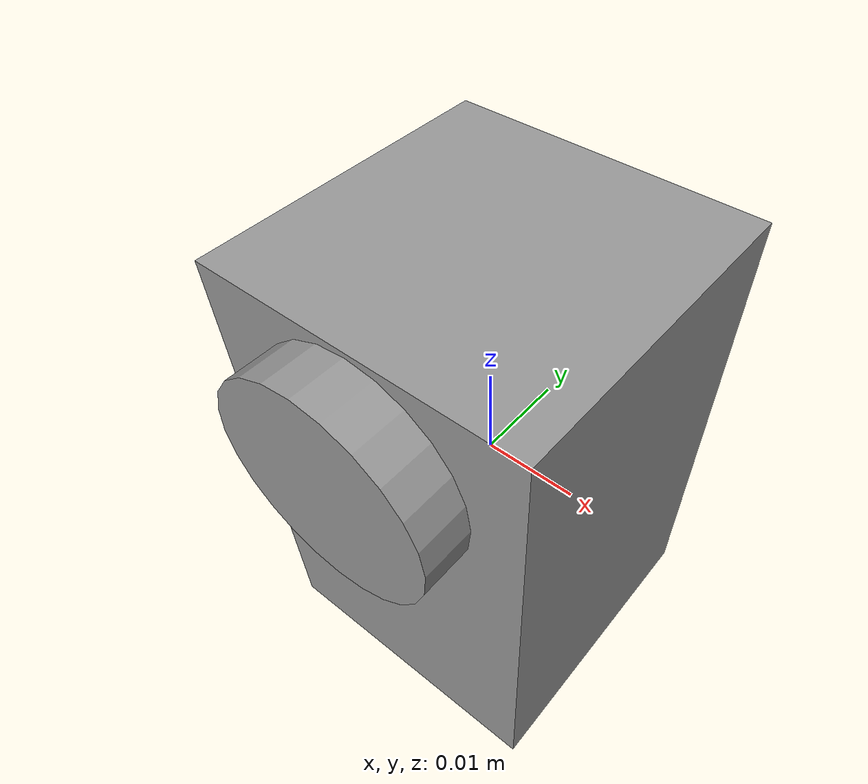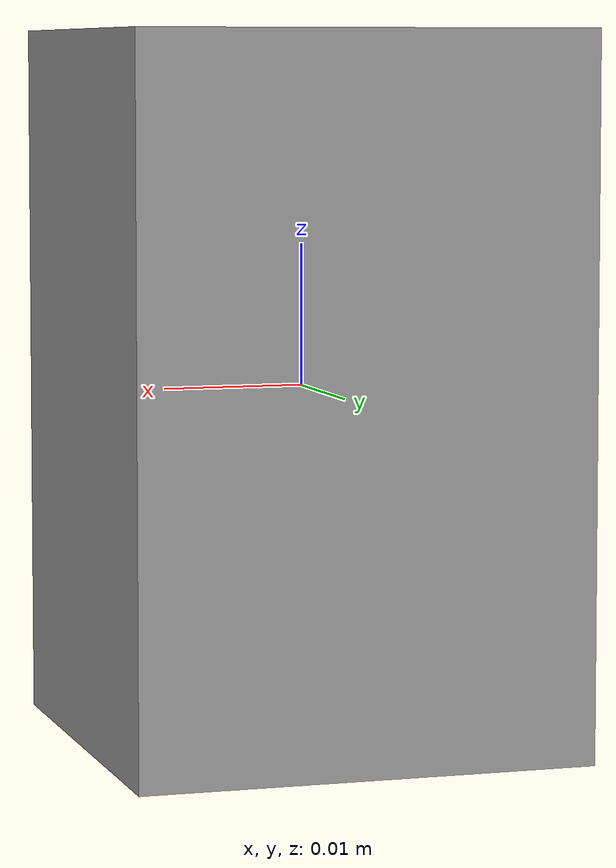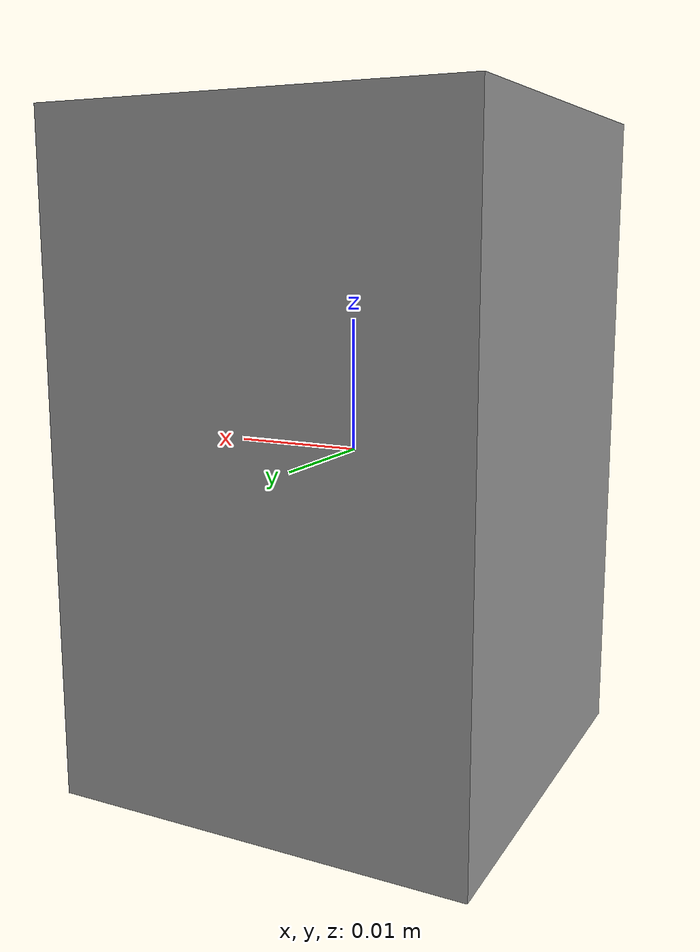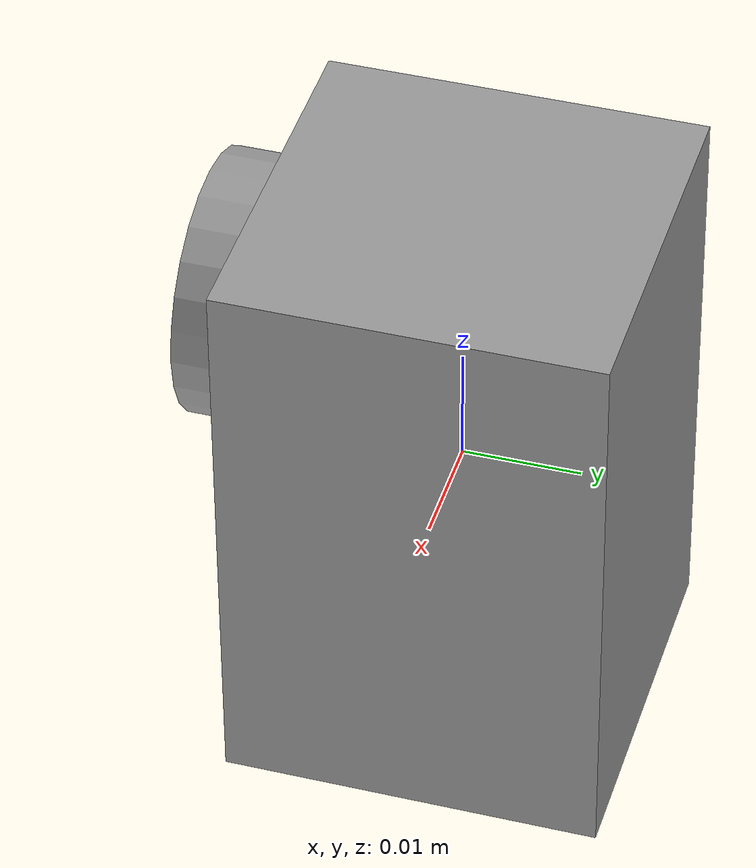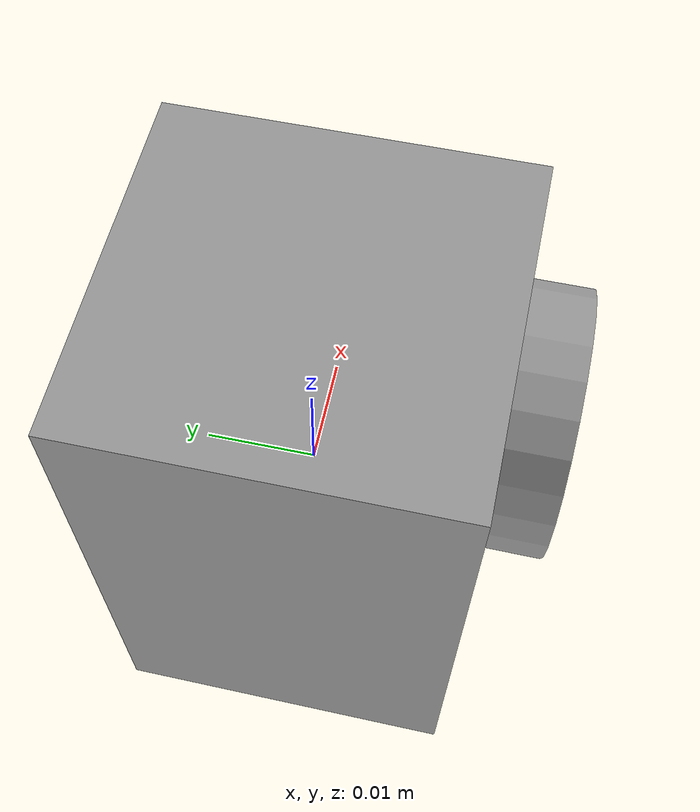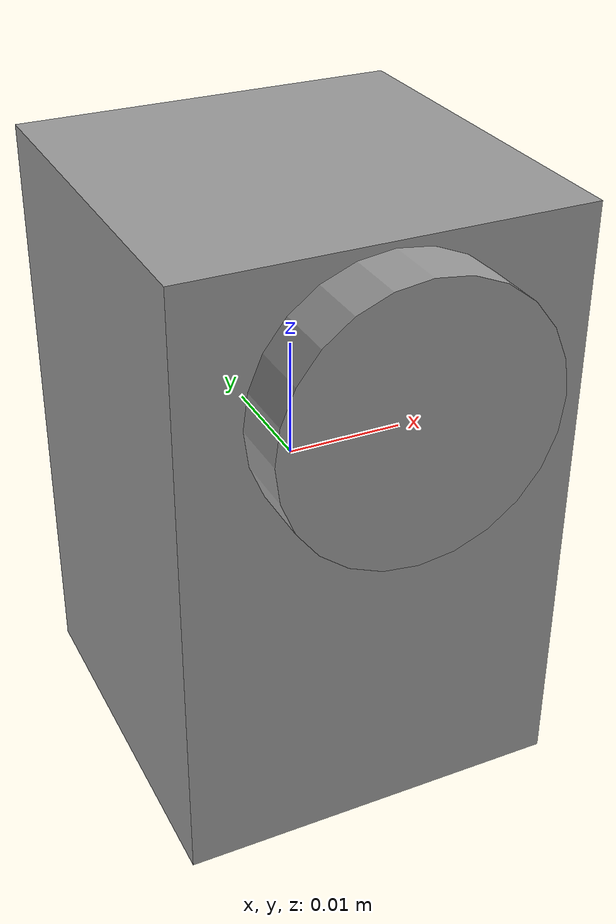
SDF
<?xml version='1.0'?>
<sdf version='1.6'>
  <model name='servo_ax12a'>
      <plugin name="ax12a" filename="libservo_pkg.so">
        <topic>/gazebo/servos/ax12a</topic>
      </plugin>
    <link name='Body'>
      <inertial>
        <mass>0.05</mass>
        <inertia>
          <ixx>1.643e-05</ixx>
          <ixy>0</ixy>
          <ixz>0</ixz>
          <iyy>1.468e-05</iyy>
          <iyz>0</iyz>
          <izz>1.028e-05</izz>
        </inertia>
        <pose frame=''>0 0 0 0 -0 0</pose>
      </inertial>
      <pose frame=''>0 0 0 0 -0 0</pose>
      <gravity>1</gravity>
      <self_collide>0</self_collide>
      <kinematic>0</kinematic>
      <enable_wind>0</enable_wind>
      <visual name='visual'>
        <pose frame=''>0 0 0 0 -0 0</pose>
        <geometry>
          <box>
            <size>0.032 0.032 0.05</size>
          </box>
        </geometry>
        <material>
          <lighting>1</lighting>
          <script>
            <uri>file://media/materials/scripts/gazebo.material</uri>
            <name>Gazebo/Grey</name>
          </script>
          <shader type='vertex'>
            <normal_map>__default__</normal_map>
          </shader>
          <ambient>0.1 0.1 0.1 1</ambient>
          <diffuse>0.1 0.1 0.1 1</diffuse>
          <specular>0.01 0.01 0.01 1</specular>
          <emissive>0 0 0 1</emissive>
        </material>
        <transparency>0</transparency>
        <cast_shadows>1</cast_shadows>
      </visual>
      <collision name='collision'>
        <laser_retro>0</laser_retro>
        <max_contacts>10</max_contacts>
        <pose frame=''>0 0 0 0 -0 0</pose>
        <geometry>
          <box>
            <size>0.032 0.032 0.05</size>
          </box>
        </geometry>
        <surface>
          <friction>
            <ode>
              <mu>1</mu>
              <mu2>1</mu2>
              <fdir1>0 0 0</fdir1>
              <slip1>0</slip1>
              <slip2>0</slip2>
            </ode>
            <torsional>
              <coefficient>1</coefficient>
              <patch_radius>0</patch_radius>
              <surface_radius>0</surface_radius>
              <use_patch_radius>1</use_patch_radius>
              <ode>
                <slip>0</slip>
              </ode>
            </torsional>
          </friction>
          <bounce>
            <restitution_coefficient>0</restitution_coefficient>
            <threshold>1e+06</threshold>
          </bounce>
          <contact>
            <collide_without_contact>0</collide_without_contact>
            <collide_without_contact_bitmask>1</collide_without_contact_bitmask>
            <collide_bitmask>1</collide_bitmask>
            <ode>
              <soft_cfm>0</soft_cfm>
              <soft_erp>0.2</soft_erp>
              <kp>1e+13</kp>
              <kd>1</kd>
              <max_vel>0.01</max_vel>
              <min_depth>0</min_depth>
            </ode>
            <bullet>
              <split_impulse>1</split_impulse>
              <split_impulse_penetration_threshold>-0.01</split_impulse_penetration_threshold>
              <soft_cfm>0</soft_cfm>
              <soft_erp>0.2</soft_erp>
              <kp>1e+13</kp>
              <kd>1</kd>
            </bullet>
          </contact>
        </surface>
      </collision>
    </link>
    <link name='Wheel'>
      <inertial>
        <mass>0.005</mass>
        <inertia>
          <ixx>1.6e-07</ixx>
          <ixy>0</ixy>
          <ixz>0</ixz>
          <iyy>1.6e-07</iyy>
          <iyz>0</iyz>
          <izz>3e-07</izz>
        </inertia>
        <pose frame=''>0 0 0 0 -0 0</pose>
      </inertial>
      <pose frame=''>0 -0.0185 0.0135 1.5708 -0 0</pose>
      <gravity>1</gravity>
      <self_collide>0</self_collide>
      <kinematic>0</kinematic>
      <enable_wind>0</enable_wind>
      <visual name='visual'>
        <pose frame=''>0 0 0 0 -0 0</pose>
        <geometry>
          <cylinder>
            <radius>0.011</radius>
            <length>0.005</length>
          </cylinder>
        </geometry>
        <material>
          <lighting>1</lighting>
          <script>
            <uri>file://media/materials/scripts/gazebo.material</uri>
            <name>Gazebo/Grey</name>
          </script>
          <shader type='vertex'>
            <normal_map>__default__</normal_map>
          </shader>
          <ambient>0.3 0.3 0.3 1</ambient>
          <diffuse>0.7 0.7 0.7 1</diffuse>
          <specular>0.01 0.01 0.01 1</specular>
          <emissive>0 0 0 1</emissive>
        </material>
        <transparency>0</transparency>
        <cast_shadows>1</cast_shadows>
      </visual>
      <collision name='collision'>
        <laser_retro>0</laser_retro>
        <max_contacts>10</max_contacts>
        <pose frame=''>0 0 0 0 -0 0</pose>
        <geometry>
          <cylinder>
            <radius>0.011</radius>
            <length>0.005</length>
          </cylinder>
        </geometry>
        <surface>
          <friction>
            <ode>
              <mu>1</mu>
              <mu2>1</mu2>
              <fdir1>0 0 0</fdir1>
              <slip1>0</slip1>
              <slip2>0</slip2>
            </ode>
            <torsional>
              <coefficient>1</coefficient>
              <patch_radius>0</patch_radius>
              <surface_radius>0</surface_radius>
              <use_patch_radius>1</use_patch_radius>
              <ode>
                <slip>0</slip>
              </ode>
            </torsional>
          </friction>
          <bounce>
            <restitution_coefficient>0</restitution_coefficient>
            <threshold>1e+06</threshold>
          </bounce>
          <contact>
            <collide_without_contact>0</collide_without_contact>
            <collide_without_contact_bitmask>1</collide_without_contact_bitmask>
            <collide_bitmask>1</collide_bitmask>
            <ode>
              <soft_cfm>0</soft_cfm>
              <soft_erp>0.2</soft_erp>
              <kp>1e+13</kp>
              <kd>1</kd>
              <max_vel>0.01</max_vel>
              <min_depth>0</min_depth>
            </ode>
            <bullet>
              <split_impulse>1</split_impulse>
              <split_impulse_penetration_threshold>-0.01</split_impulse_penetration_threshold>
              <soft_cfm>0</soft_cfm>
              <soft_erp>0.2</soft_erp>
              <kp>1e+13</kp>
              <kd>1</kd>
            </bullet>
          </contact>
        </surface>
      </collision>
    </link>
    <joint name='j_Body_Wheel' type='revolute'>
      <parent>Body</parent>
      <child>Wheel</child>
      <pose frame=''>0 0 0 0 -0 0</pose>
      <axis>
        <xyz>0 0 1</xyz>
        <use_parent_model_frame>0</use_parent_model_frame>
        <limit>
          <lower>-1.79769e+308</lower>
          <upper>1.79769e+308</upper>
          <effort>-1</effort>
          <velocity>-1</velocity>
        </limit>
        <dynamics>
          <spring_reference>0</spring_reference>
          <spring_stiffness>0</spring_stiffness>
          <damping>0.01</damping>
        </dynamics>
      </axis>
      <physics>
        <ode>
          <limit>
            <cfm>0</cfm>
            <erp>0.2</erp>
          </limit>
          <suspension>
            <cfm>0</cfm>
            <erp>0.2</erp>
          </suspension>
        </ode>
      </physics>
    </joint>
    <static>0</static>
    <allow_auto_disable>1</allow_auto_disable>
  </model>
</sdf>
